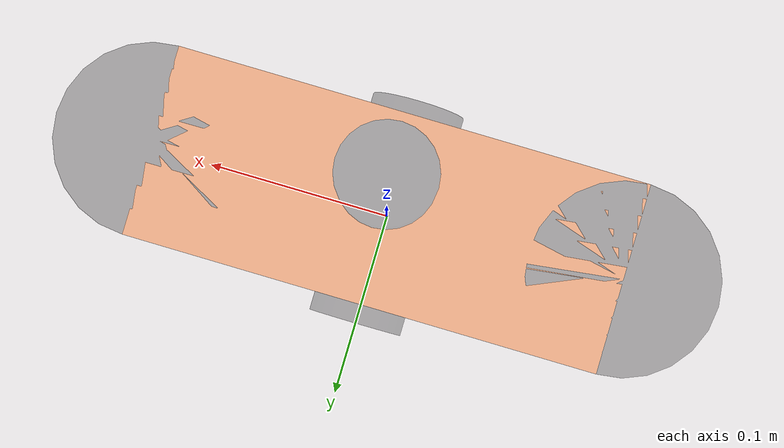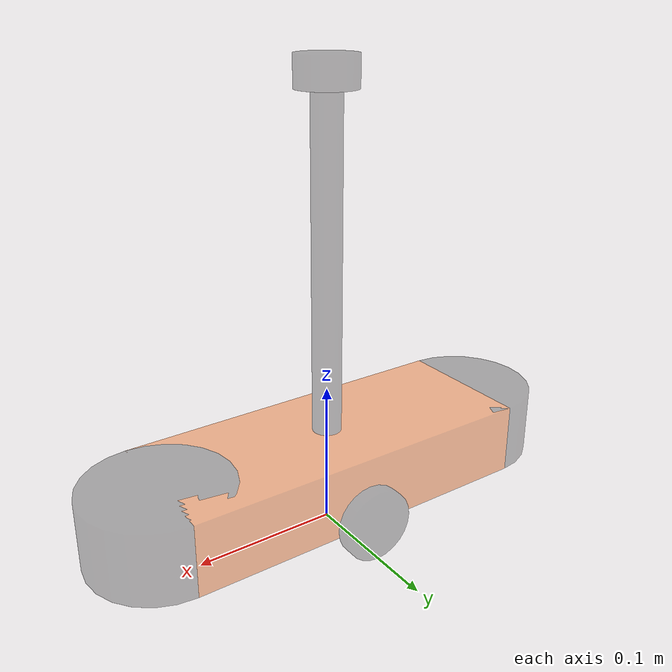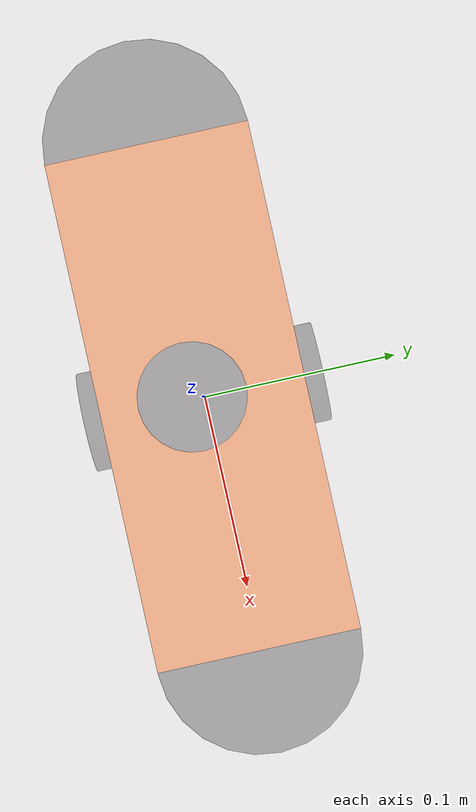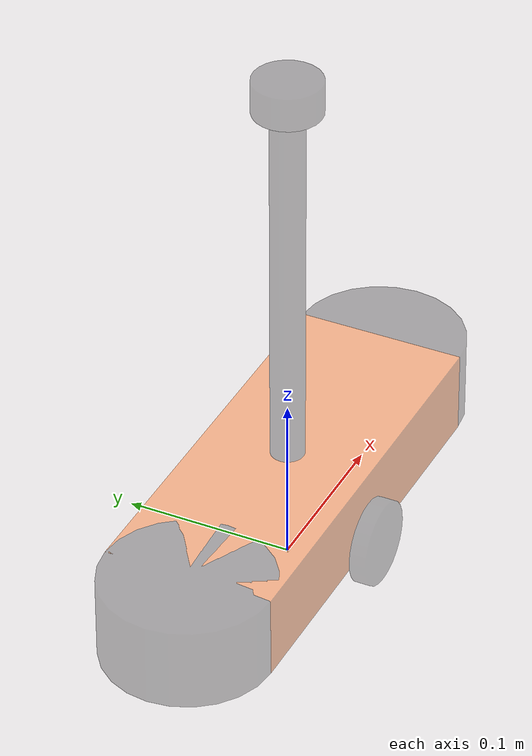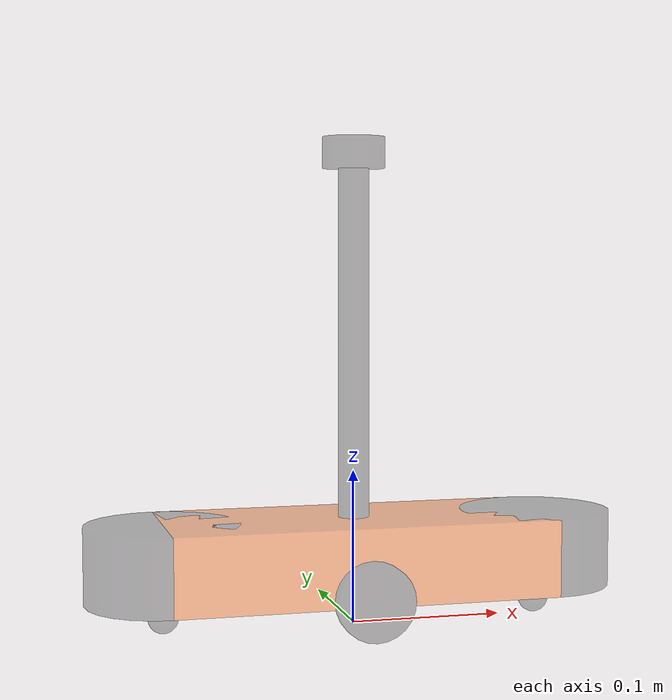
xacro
<robot name="mycar" xmlns:xacro="http://wiki.ros.org/xacro">

    <xacro:property name="footprint_radius" value="0.001" />
    <!-- 1.添加 base_footprint -->
    <link name="base_footprint">
        <visual>
            <geometry>
                <sphere radius="${footprint_radius}" />
            </geometry>
        </visual>
    </link>

    <!-- 甲板下 -->
    <xacro:property name="baseA_w" value="0.1" />
    <xacro:property name="baseA_l" value="0.25" />
    <xacro:property name="baseA_h" value="0.05" />
    <xacro:property name="baseA_mass" value="1" />
    <xacro:property name="lidi" value="0.02" />
    <xacro:property name="baseA_joint_z" value="${baseA_h / 2 + lidi}" />

    <!-- 2.1 link -->
    <link name="baseA_link">
        <visual>
            <geometry>
                <box size="${baseA_l} ${baseA_w} ${baseA_h}" />
            </geometry>
            <origin xyz="0 0 0" rpy="0 0 0" />
            <material name="baseAlink_color">
                <color rgba="1.0 0.5 0.2 0.5" />
            </material>
        </visual>
        <collision>
            <geometry>
                <box size="${baseA_l} ${baseA_w} ${baseA_h}" />
            </geometry>
            <origin xyz="0 0 0" rpy="0 0 0" />
        </collision>
        <!-- 调用矩阵函数 -->
        <xacro:Box_inertial_matrix m="${baseA_mass}" l="${baseA_l}" w="${baseA_w}" h="${baseA_h}" />
    </link>
    <!-- 颜色 -->
    <gazebo reference="baseA_link">
        <material>Gazebo/Red</material>
    </gazebo>
    <!-- 2.2 joint -->
    <joint name="linkA2footprint" type="fixed">
        <parent link="base_footprint" />
        <child link="baseA_link" />
        <origin xyz="0 0 ${baseA_joint_z}" rpy="0 0 0" />
    </joint>

    <!-- 雷达支杆 -->
    <xacro:property name="s_radius" value="0.01" />
    <xacro:property name="s_length" value="0.25" />
    <xacro:property name="s_mass" value="0.5" />
    <xacro:property name="s_joint_z" value="${s_length / 2}" />

    <link name="support">
        <visual>
            <geometry>
                <cylinder radius="${s_radius}" length="${s_length}" />
            </geometry>
            <origin xyz="0 0 0" rpy="0 0 0" />
            <material name="support_color">
                <color rgba="0 0 0 0.3" />
            </material>
        </visual>
        <collision>
            <geometry>
                <cylinder radius="${s_radius}" length="${s_length}" />
            </geometry>
            <origin xyz="0 0 0" rpy="0 0 0" />
        </collision>
        <xacro:cylinder_inertial_matrix m="${s_mass}" r="${s_radius}" h="${s_length}" />
    </link>
    <gazebo reference="support">
        <material>Gazebo/White</material>
    </gazebo>

    <!-- 3.2 joint -->
    <joint name="support2link" type="fixed">
        <parent link="baseA_link" />
        <child link="support" />
        <origin xyz="0 0 ${s_joint_z}" rpy="0 0 0" />
        <axis xyz="0 0 0" />
    </joint>

    <!-- laser -->
    <xacro:property name="laser_radius" value="0.02" />
    <xacro:property name="laser_length" value="0.02" />
    <xacro:property name="laser_mass" value="0.05" />
    <xacro:property name="laser_joint_z" value="${s_length / 2 + laser_length / 2}" />

    <link name="laser">
        <visual>
            <geometry>
                <cylinder radius="${laser_radius}" length="${laser_length}" />
            </geometry>
            <origin xyz="0 0 0" rpy="0 0 0" />
            <material name="laser_color">
                <color rgba="0 0 0 0.3" />
            </material>
        </visual>
        <collision>
            <geometry>
                <cylinder radius="${laser_radius}" length="${laser_length}" />
            </geometry>
            <origin xyz="0 0 0" rpy="0 0 0" />
        </collision>
        <xacro:cylinder_inertial_matrix m="${laser_mass}" r="${laser_radius}" h="${laser_length}" />
    </link>
    <gazebo reference="laser">
        <material>Gazebo/Black</material>
    </gazebo>

    <!-- 3.2 joint -->
    <joint name="laser2link" type="fixed">
        <parent link="support" />
        <child link="laser" />
        <origin xyz="0 0 ${laser_joint_z}" rpy="0 0 0" />
        <axis xyz="0 0 0" />
    </joint>

    <!-- 前后的两个圆柱y -->
    <xacro:property name="y_radius" value="0.05" />
    <xacro:property name="y_length" value="0.05" />
    <xacro:property name="y_mass" value="1" />
    <xacro:property name="y_joint_x" value="${baseA_l / 2}" />

    <xacro:macro name="y_func" params="name flag">
        <!-- 3.1 link -->
        <link name="${name}_wheel">
            <visual>
                <geometry>
                    <cylinder radius="${y_radius}" length="${y_length}" />
                </geometry>
                <origin xyz="0 0 0" rpy="0 0 0" />
                <material name="wheelA_color">
                    <color rgba="0 0 0 0.3" />
                </material>
            </visual>
            <collision>
                <geometry>
                    <cylinder radius="${y_radius}" length="${y_length}" />
                </geometry>
                <origin xyz="0 0 0" rpy="0 0 0" />
            </collision>
            <xacro:cylinder_inertial_matrix m="${y_mass}" r="${y_radius}" h="${y_length}" />
        </link>
        <gazebo reference="${name}_wheel">
            <material>Gazebo/Red</material>
        </gazebo>

        <!-- 3.2 joint -->
        <joint name="${name}2link" type="fixed">
            <parent link="baseA_link" />
            <child link="${name}_wheel" />
            <origin xyz="${(y_joint_x) * flag} 0 0" rpy="0 0 0" />
            <axis xyz="0 0 0" />
        </joint>
    </xacro:macro>
    <!-- 调用！！！ -->
    <xacro:y_func name="front" flag="1" />
    <xacro:y_func name="back" flag="-1" />

    <!-- 3添加驱动轮 -->
    <!-- 属性的封装 -->
    <xacro:property name="wheel_radius" value="0.025" />
    <xacro:property name="wheel_length" value="0.01" />
    <xacro:property name="wheel_mass" value="0.05" />
    <xacro:property name="PI" value="3.1415927" />
    <xacro:property name="wheel_joint_z" value="${lidi}" />

    <xacro:macro name="wheel_func" params="wheel_name flag">

        <link name="${wheel_name}_wheel">
            <visual>
                <geometry>
                    <cylinder radius="${wheel_radius}" length="${wheel_length}" />
                </geometry>
                <origin xyz="0 0 0" rpy="${PI / 2} 0 0" />
                <material name="wheelB_color">
                    <color rgba="0 0 0 0.3" />
                </material>
            </visual>
            <collision>
                <geometry>
                    <cylinder radius="${wheel_radius}" length="${wheel_length}" />
                </geometry>
                <origin xyz="0 0 0" rpy="${PI / 2} 0 0" />
            </collision>
            <xacro:cylinder_inertial_matrix m="${wheel_mass}" r="${wheel_radius}" h="${wheel_length}" />
        </link>
        <gazebo reference="${wheel_name}_wheel">
            <material>Gazebo/Red</material>
        </gazebo>

        <joint name="${wheel_name}2link" type="continuous">
            <parent link="baseA_link" />
            <child link="${wheel_name}_wheel" />
            <origin xyz="0 ${flag * (baseA_w / 2 + wheel_length / 2)} -0.02" rpy="0 0 0" />
            <axis xyz="0 1 0" />
        </joint>
    </xacro:macro>

    <xacro:wheel_func wheel_name="left" flag="1" />
    <xacro:wheel_func wheel_name="right" flag="-1" />

     <!-- 万向轮 -->
    <xacro:property name="wan_wheel_radius" value="0.01" />
    <xacro:property name="wan_wheel_mass" value="0.01" />
    <xacro:property name="wan_wheel_x" value="${baseA_l / 2}" />
    <xacro:property name="wan_wheel_z" value="${-(wan_wheel_radius + baseA_h / 2)}" />

    <xacro:macro name="wan_wheel" params="name flag">
        <link name="${name}_wheel">
            <visual>
                <geometry>
                    <sphere radius="${wan_wheel_radius}" />
                </geometry>
                <origin xyz="0 0 0" rpy="0 0 0" />
                <material name="wheel_color">
                    <color rgba="0 0 0 0.3" />
                </material>
            </visual>
            <collision>
                <geometry>
                    <sphere radius="${wan_wheel_radius}" />
                </geometry>
                <origin xyz="0 0 0" rpy="0 0 0" />
            </collision>
            <xacro:sphere_inertial_matrix m="${wan_wheel_mass}" r="${wan_wheel_radius}" />
        </link>
        <gazebo reference="${name}_wheel">
            <material>Gazebo/Red</material>
        </gazebo>

        <!-- 4.2 joint -->
        <!-- 前轮 -->
        <joint name="${name}2link" type="continuous">
            <parent link="baseA_link" />
            <child link="${name}_wheel" />
            <origin xyz="${flag * wan_wheel_x} 0 ${wan_wheel_z}" rpy="0 0 0" />
            <axis xyz="0 1 0" />
        </joint>
    </xacro:macro>
    <xacro:wan_wheel name="f" flag="1" />
    <xacro:wan_wheel name="b" flag="-1" />

</robot>
